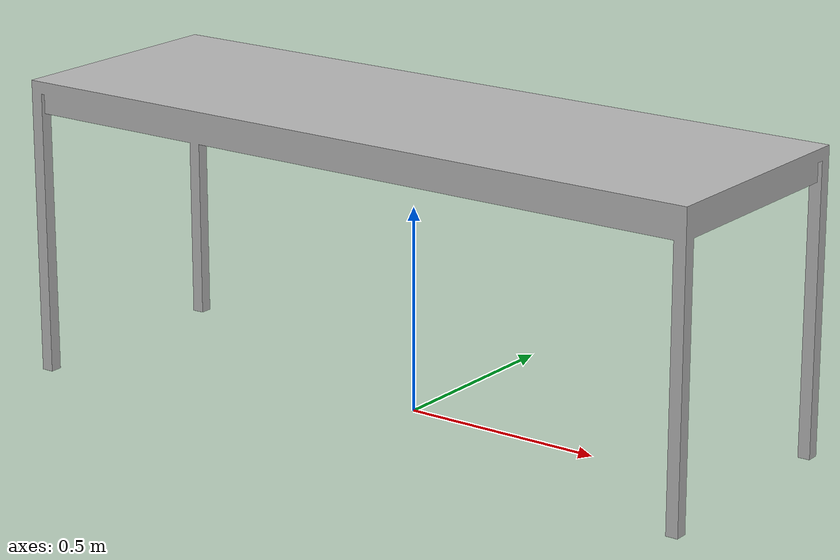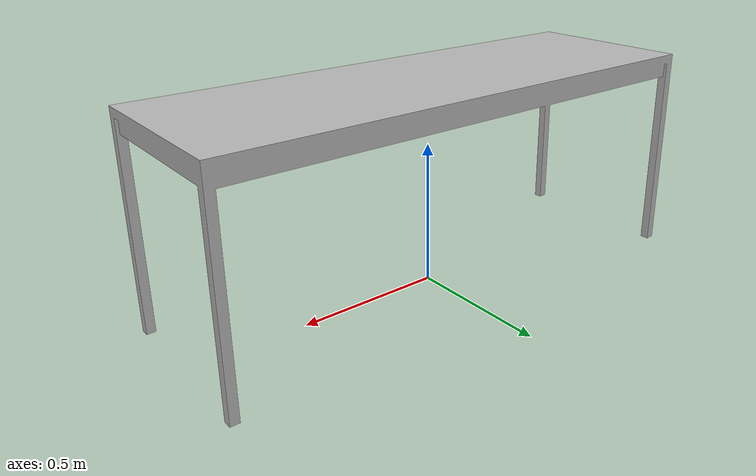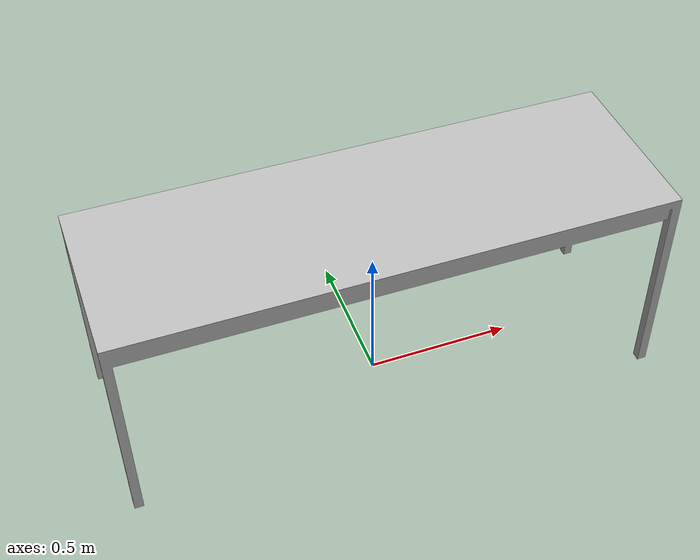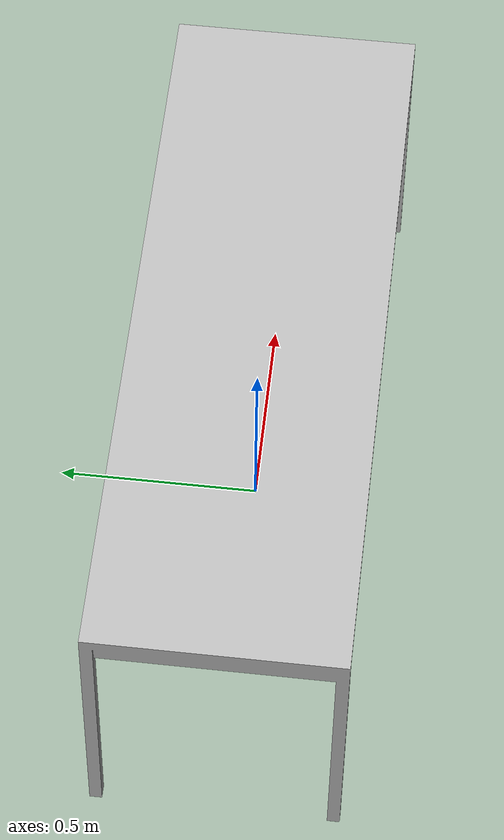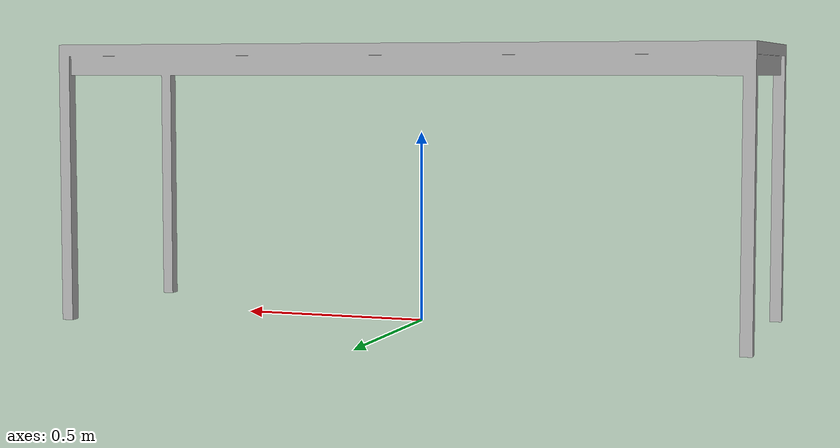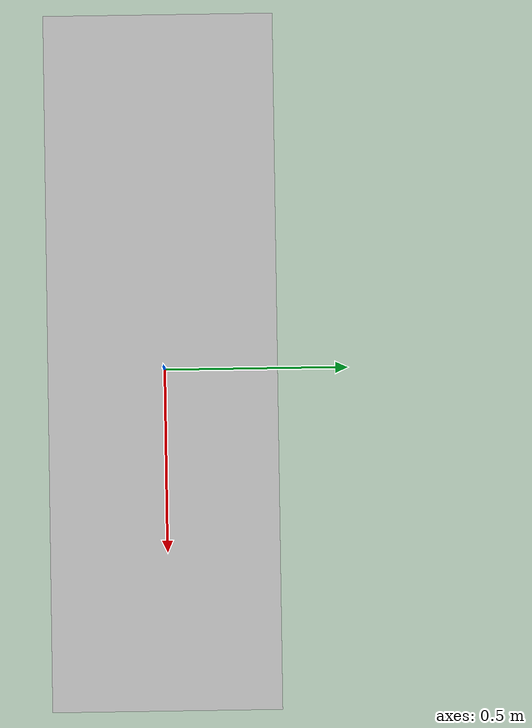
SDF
<sdf version="1.4">
  <model name="lab table">
    <static>1</static>
    <link name="link">
      <collision name="colision">
        <pose>0 0 0 0 0 0</pose>
        <geometry>
          <mesh>
            <uri>model://lab_table/meshes/lab_table.min.dae</uri>
            <scale> 1 1 1 </scale>
          </mesh>
        </geometry>
        <surface>
          <bounce />
          <friction>
            <ode />
          </friction>
          <contact>
            <ode />
          </contact>
        </surface>
      </collision>

      <visual name="visual">
        <pose>0 0 0 0 0 0</pose>
        <geometry>
          <mesh>
            <uri>model://lab_table/meshes/lab_table.dae</uri>
            <scale> 1 1 1 </scale>
          </mesh>
        </geometry>
      </visual>

      <velocity_decay>
        <linear>0.000000</linear>
        <angular>0.000000</angular>
      </velocity_decay>
      <self_collide>0</self_collide>
      <kinematic>0</kinematic>
      <gravity>1</gravity>
    </link>
  </model>
</sdf>
